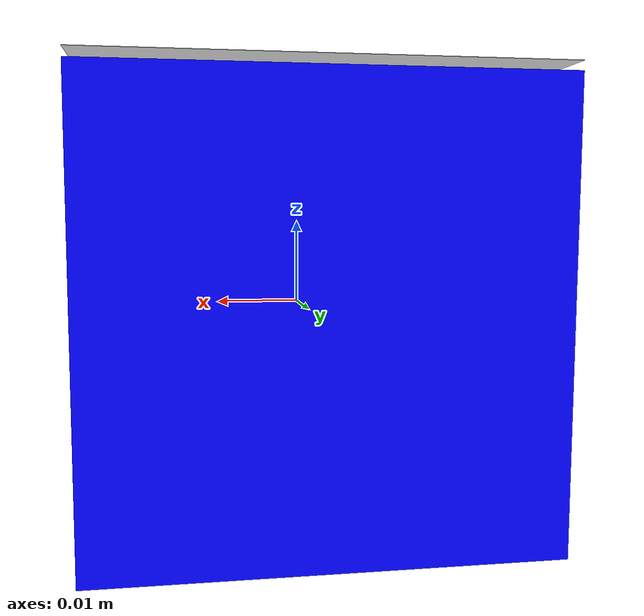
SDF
<?xml version="1.0" ?>
<sdf version="1.9">

    <model name="blue_block_april">
      <static>true</static>
      <link name="link">
        <pose>0 0 0 0 0 0</pose>
        <collision name="collision">
          <geometry>
            <box>
              <size>0.05 0.05 0.05</size>
            </box>
          </geometry>
          <surface>
            <contact>
              <collide_without_contact>false</collide_without_contact>
            </contact>
          </surface>
        </collision>
        <inertial>
          <mass>0.1</mass>
          <inertia>
            <ixx>8.333e-05</ixx>
            <ixy>0.0</ixy>
            <ixz>0.0</ixz>
            <iyy>8.333e-05</iyy>
            <iyz>0.0</iyz>
            <izz>8.333e-05</izz>
          </inertia>
        </inertial>
        <visual name="visual">
          <geometry>
            <box>
              <size>0.05 0.05 0.05</size>
            </box>
          </geometry>
          <material>
            <ambient>0 0 1 1</ambient>
            <diffuse>0 0 1 1</diffuse>
            <specular>0.1 0.1 0.1 1</specular>
            <emissive>0 0 0 1</emissive>
          </material>

        </visual>

        <!-- AprilTag decal on top face -->
        <visual name="apriltag_decal">
          <pose>0 0 0.026 0 0 0</pose>
          <geometry>
            <mesh>
              <uri>model://Apriltag36_11_00001/meshes/tag36_11_00001.dae</uri>
              <scale>0.5 0.5 0.5</scale>
            </mesh>
          </geometry>
        </visual>
      </link>
    </model>
</sdf>
